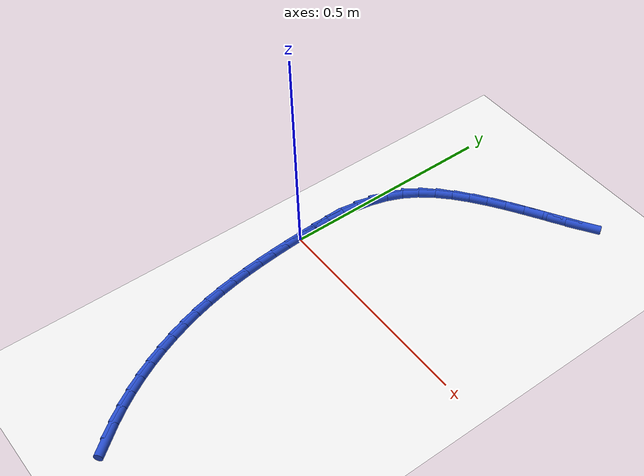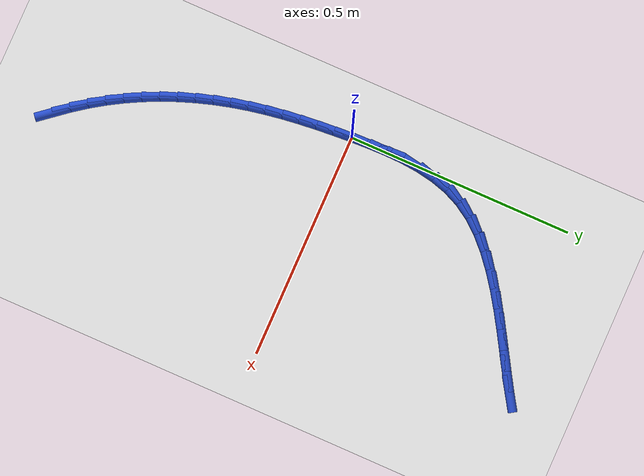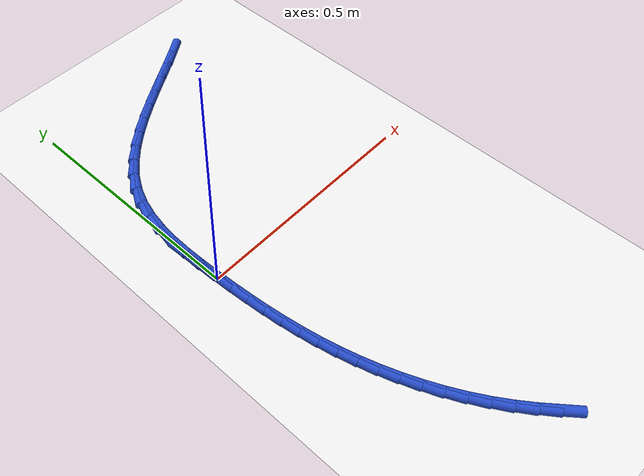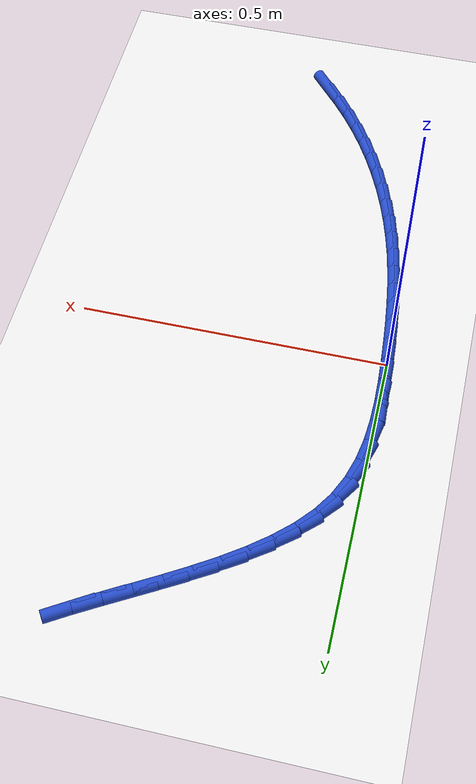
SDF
<sdf version="1.6">
 <world name="default">
  <model name="ground_plane">
   <static>1</static>
   <link name="link">
    <collision name="collision">
     <geometry><plane><normal>0 0 1</normal><size>100 100</size></plane></geometry>
     <surface><friction><ode><mu>100</mu><mu2>50</mu2></ode></friction></surface>
    </collision>
    <visual name="visual">
     <cast_shadows>0</cast_shadows>
     <geometry><plane><normal>0 0 1</normal><size>100 100</size></plane></geometry>
     <material>
      <script><uri>file://media/materials/scripts/gazebo.material</uri><name>Gazebo/WhiteGlow</name></script>
     </material>
    </visual>
   </link>
  </model>
  <model name="line">
   <link name="link_0">
    <pose>2.5804011705155006e-17 4.85722573273506e-17 0.01 0 1.57 -1.5212838050681239</pose>
    <collision name="collision">
     <geometry><cylinder><radius>0.01</radius><length>0.08</length></cylinder></geometry>
    </collision>
    <visual name="visual">
     <material>
      <script><name>Gazebo/Blue</name><uri>file://media/materials/scripts/gazebo.material</uri></script>
     </material>
     <geometry><cylinder><radius>0.01</radius><length>0.08</length></cylinder></geometry>
    </visual>
   </link>
   <link name="link_1">
    <pose>-0.0019433137426240659 0.0392168568818954 0.01 0 1.57 -1.5498003176207837</pose>
    <collision name="collision">
     <geometry><cylinder><radius>0.01</radius><length>0.08</length></cylinder></geometry>
    </collision>
    <visual name="visual">
     <material>
      <script><name>Gazebo/Blue</name><uri>file://media/materials/scripts/gazebo.material</uri></script>
     </material>
     <geometry><cylinder><radius>0.01</radius><length>0.08</length></cylinder></geometry>
    </visual>
   </link>
   <link name="link_2">
    <pose>-0.0027694834000763996 0.07855996471965532 0.01 0 1.57 1.5458418137314556</pose>
    <collision name="collision">
     <geometry><cylinder><radius>0.01</radius><length>0.08</length></cylinder></geometry>
    </collision>
    <visual name="visual">
     <material>
      <script><name>Gazebo/Blue</name><uri>file://media/materials/scripts/gazebo.material</uri></script>
     </material>
     <geometry><cylinder><radius>0.01</radius><length>0.08</length></cylinder></geometry>
    </visual>
   </link>
   <link name="link_3">
    <pose>-0.0017938675187386993 0.11764761816727691 0.01 0 1.57 1.4809994952417194</pose>
    <collision name="collision">
     <geometry><cylinder><radius>0.01</radius><length>0.08</length></cylinder></geometry>
    </collision>
    <visual name="visual">
     <material>
      <script><name>Gazebo/Blue</name><uri>file://media/materials/scripts/gazebo.material</uri></script>
     </material>
     <geometry><cylinder><radius>0.01</radius><length>0.08</length></cylinder></geometry>
    </visual>
   </link>
   <link name="link_4">
    <pose>0.0016681753550073187 0.15609811187875713 0.01 0 1.57 1.395410960967276</pose>
    <collision name="collision">
     <geometry><cylinder><radius>0.01</radius><length>0.08</length></cylinder></geometry>
    </collision>
    <visual name="visual">
     <material>
      <script><name>Gazebo/Blue</name><uri>file://media/materials/scripts/gazebo.material</uri></script>
     </material>
     <geometry><cylinder><radius>0.01</radius><length>0.08</length></cylinder></geometry>
    </visual>
   </link>
   <link name="link_5">
    <pose>0.008301286674779926 0.1935297405080931 0.01 0 1.57 1.2875199271453694</pose>
    <collision name="collision">
     <geometry><cylinder><radius>0.01</radius><length>0.08</length></cylinder></geometry>
    </collision>
    <visual name="visual">
     <material>
      <script><name>Gazebo/Blue</name><uri>file://media/materials/scripts/gazebo.material</uri></script>
     </material>
     <geometry><cylinder><radius>0.01</radius><length>0.08</length></cylinder></geometry>
    </visual>
   </link>
   <link name="link_6">
    <pose>0.018790107894197414 0.22956079870928173 0.01 0 1.57 1.1572755042505294</pose>
    <collision name="collision">
     <geometry><cylinder><radius>0.01</radius><length>0.08</length></cylinder></geometry>
    </collision>
    <visual name="visual">
     <material>
      <script><name>Gazebo/Blue</name><uri>file://media/materials/scripts/gazebo.material</uri></script>
     </material>
     <geometry><cylinder><radius>0.01</radius><length>0.08</length></cylinder></geometry>
    </visual>
   </link>
   <link name="link_7">
    <pose>0.03381928046687805 0.2638095811363201 0.01 0 1.57 1.0113716114618447</pose>
    <collision name="collision">
     <geometry><cylinder><radius>0.01</radius><length>0.08</length></cylinder></geometry>
    </collision>
    <visual name="visual">
     <material>
      <script><name>Gazebo/Blue</name><uri>file://media/materials/scripts/gazebo.material</uri></script>
     </material>
     <geometry><cylinder><radius>0.01</radius><length>0.08</length></cylinder></geometry>
    </visual>
   </link>
   <link name="link_8">
    <pose>0.053944759830068384 0.2959512889091451 0.01 0 1.57 0.8801181496297427</pose>
    <collision name="collision">
     <geometry><cylinder><radius>0.01</radius><length>0.08</length></cylinder></geometry>
    </collision>
    <visual name="visual">
     <material>
      <script><name>Gazebo/Blue</name><uri>file://media/materials/scripts/gazebo.material</uri></script>
     </material>
     <geometry><cylinder><radius>0.01</radius><length>0.08</length></cylinder></geometry>
    </visual>
   </link>
   <link name="link_9">
    <pose>0.07882666081428817 0.32605727437229265 0.01 0 1.57 0.7747828723350667</pose>
    <collision name="collision">
     <geometry><cylinder><radius>0.01</radius><length>0.08</length></cylinder></geometry>
    </collision>
    <visual name="visual">
     <material>
      <script><name>Gazebo/Blue</name><uri>file://media/materials/scripts/gazebo.material</uri></script>
     </material>
     <geometry><cylinder><radius>0.01</radius><length>0.08</length></cylinder></geometry>
    </visual>
   </link>
   <link name="link_10">
    <pose>0.10774421695706923 0.3543673200458348 0.01 0 1.57 0.6928180842921344</pose>
    <collision name="collision">
     <geometry><cylinder><radius>0.01</radius><length>0.08</length></cylinder></geometry>
    </collision>
    <visual name="visual">
     <material>
      <script><name>Gazebo/Blue</name><uri>file://media/materials/scripts/gazebo.material</uri></script>
     </material>
     <geometry><cylinder><radius>0.01</radius><length>0.08</length></cylinder></geometry>
    </visual>
   </link>
   <link name="link_11">
    <pose>0.1399752656243701 0.3811218258532908 0.01 0 1.57 0.6309341611572226</pose>
    <collision name="collision">
     <geometry><cylinder><radius>0.01</radius><length>0.08</length></cylinder></geometry>
    </collision>
    <visual name="visual">
     <material>
      <script><name>Gazebo/Blue</name><uri>file://media/materials/scripts/gazebo.material</uri></script>
     </material>
     <geometry><cylinder><radius>0.01</radius><length>0.08</length></cylinder></geometry>
    </visual>
   </link>
   <link name="link_12">
    <pose>0.17479764418214916 0.40656119171818006 0.01 0 1.57 0.5861814027398884</pose>
    <collision name="collision">
     <geometry><cylinder><radius>0.01</radius><length>0.08</length></cylinder></geometry>
    </collision>
    <visual name="visual">
     <material>
      <script><name>Gazebo/Blue</name><uri>file://media/materials/scripts/gazebo.material</uri></script>
     </material>
     <geometry><cylinder><radius>0.01</radius><length>0.08</length></cylinder></geometry>
    </visual>
   </link>
   <link name="link_13">
    <pose>0.21148918999636473 0.4309258175640216 0.01 0 1.57 0.556338241644553</pose>
    <collision name="collision">
     <geometry><cylinder><radius>0.01</radius><length>0.08</length></cylinder></geometry>
    </collision>
    <visual name="visual">
     <material>
      <script><name>Gazebo/Blue</name><uri>file://media/materials/scripts/gazebo.material</uri></script>
     </material>
     <geometry><cylinder><radius>0.01</radius><length>0.08</length></cylinder></geometry>
    </visual>
   </link>
   <link name="link_14">
    <pose>0.24932774043297545 0.45445610331433495 0.01 0 1.57 0.5400025893214145</pose>
    <collision name="collision">
     <geometry><cylinder><radius>0.01</radius><length>0.08</length></cylinder></geometry>
    </collision>
    <visual name="visual">
     <material>
      <script><name>Gazebo/Blue</name><uri>file://media/materials/scripts/gazebo.material</uri></script>
     </material>
     <geometry><cylinder><radius>0.01</radius><length>0.08</length></cylinder></geometry>
    </visual>
   </link>
   <link name="link_15">
    <pose>0.2875911328579397 0.47739244889263915 0.01 0 1.57 0.5365985957737185</pose>
    <collision name="collision">
     <geometry><cylinder><radius>0.01</radius><length>0.08</length></cylinder></geometry>
    </collision>
    <visual name="visual">
     <material>
      <script><name>Gazebo/Blue</name><uri>file://media/materials/scripts/gazebo.material</uri></script>
     </material>
     <geometry><cylinder><radius>0.01</radius><length>0.08</length></cylinder></geometry>
    </visual>
   </link>
   <link name="link_16">
    <pose>0.3255572046372158 0.49997525422245376 0.01 0 1.57 0.5464024063301988</pose>
    <collision name="collision">
     <geometry><cylinder><radius>0.01</radius><length>0.08</length></cylinder></geometry>
    </collision>
    <visual name="visual">
     <material>
      <script><name>Gazebo/Blue</name><uri>file://media/materials/scripts/gazebo.material</uri></script>
     </material>
     <geometry><cylinder><radius>0.01</radius><length>0.08</length></cylinder></geometry>
    </visual>
   </link>
   <link name="link_17">
    <pose>0.36250379313676234 0.5224449192272977 0.01 0 1.57 0.5706372361215709</pose>
    <collision name="collision">
     <geometry><cylinder><radius>0.01</radius><length>0.08</length></cylinder></geometry>
    </collision>
    <visual name="visual">
     <material>
      <script><name>Gazebo/Blue</name><uri>file://media/materials/scripts/gazebo.material</uri></script>
     </material>
     <geometry><cylinder><radius>0.01</radius><length>0.08</length></cylinder></geometry>
    </visual>
   </link>
   <link name="link_213">
    <pose>0.20644078209193645 -0.6007151706756728 0.01 0 1.57 -0.8879624045946204</pose>
    <collision name="collision">
     <geometry><cylinder><radius>0.01</radius><length>0.08</length></cylinder></geometry>
    </collision>
    <visual name="visual">
     <material>
      <script><name>Gazebo/Blue</name><uri>file://media/materials/scripts/gazebo.material</uri></script>
     </material>
     <geometry><cylinder><radius>0.01</radius><length>0.08</length></cylinder></geometry>
    </visual>
   </link>
   <link name="link_214">
    <pose>0.1821087886696574 -0.5707997393730493 0.01 0 1.57 -0.9355120042579427</pose>
    <collision name="collision">
     <geometry><cylinder><radius>0.01</radius><length>0.08</length></cylinder></geometry>
    </collision>
    <visual name="visual">
     <material>
      <script><name>Gazebo/Blue</name><uri>file://media/materials/scripts/gazebo.material</uri></script>
     </material>
     <geometry><cylinder><radius>0.01</radius><length>0.08</length></cylinder></geometry>
    </visual>
   </link>
   <link name="link_215">
    <pose>0.1592908565104605 -0.5398492430884367 0.01 0 1.57 -0.9851756323133741</pose>
    <collision name="collision">
     <geometry><cylinder><radius>0.01</radius><length>0.08</length></cylinder></geometry>
    </collision>
    <visual name="visual">
     <material>
      <script><name>Gazebo/Blue</name><uri>file://media/materials/scripts/gazebo.material</uri></script>
     </material>
     <geometry><cylinder><radius>0.01</radius><length>0.08</length></cylinder></geometry>
    </visual>
   </link>
   <link name="link_216">
    <pose>0.13808579696158535 -0.5078769121526071 0.01 0 1.57 -1.0354320052394206</pose>
    <collision name="collision">
     <geometry><cylinder><radius>0.01</radius><length>0.08</length></cylinder></geometry>
    </collision>
    <visual name="visual">
     <material>
      <script><name>Gazebo/Blue</name><uri>file://media/materials/scripts/gazebo.material</uri></script>
     </material>
     <geometry><cylinder><radius>0.01</radius><length>0.08</length></cylinder></geometry>
    </visual>
   </link>
   <link name="link_217">
    <pose>0.11854661127188579 -0.4749352823454892 0.01 0 1.57 -1.0841091023828264</pose>
    <collision name="collision">
     <geometry><cylinder><radius>0.01</radius><length>0.08</length></cylinder></geometry>
    </collision>
    <visual name="visual">
     <material>
      <script><name>Gazebo/Blue</name><uri>file://media/materials/scripts/gazebo.material</uri></script>
     </material>
     <geometry><cylinder><radius>0.01</radius><length>0.08</length></cylinder></geometry>
    </visual>
   </link>
   <link name="link_218">
    <pose>0.10066059820681408 -0.44113326272959 0.01 0 1.57 -1.1311387293549433</pose>
    <collision name="collision">
     <geometry><cylinder><radius>0.01</radius><length>0.08</length></cylinder></geometry>
    </collision>
    <visual name="visual">
     <material>
      <script><name>Gazebo/Blue</name><uri>file://media/materials/scripts/gazebo.material</uri></script>
     </material>
     <geometry><cylinder><radius>0.01</radius><length>0.08</length></cylinder></geometry>
    </visual>
   </link>
   <link name="link_219">
    <pose>0.0844099820852425 -0.4065841162852005 0.01 0 1.57 -1.1766494101014424</pose>
    <collision name="collision">
     <geometry><cylinder><radius>0.01</radius><length>0.08</length></cylinder></geometry>
    </collision>
    <visual name="visual">
     <material>
      <script><name>Gazebo/Blue</name><uri>file://media/materials/scripts/gazebo.material</uri></script>
     </material>
     <geometry><cylinder><radius>0.01</radius><length>0.08</length></cylinder></geometry>
    </visual>
   </link>
   <link name="link_220">
    <pose>0.06977698722604445 -0.37140110599261345 0.01 0 1.57 -1.2207885703036991</pose>
    <collision name="collision">
     <geometry><cylinder><radius>0.01</radius><length>0.08</length></cylinder></geometry>
    </collision>
    <visual name="visual">
     <material>
      <script><name>Gazebo/Blue</name><uri>file://media/materials/scripts/gazebo.material</uri></script>
     </material>
     <geometry><cylinder><radius>0.01</radius><length>0.08</length></cylinder></geometry>
    </visual>
   </link>
   <link name="link_221">
    <pose>0.05674383794809212 -0.33569749483211975 0.01 0 1.57 -1.263718732462759</pose>
    <collision name="collision">
     <geometry><cylinder><radius>0.01</radius><length>0.08</length></cylinder></geometry>
    </collision>
    <visual name="visual">
     <material>
      <script><name>Gazebo/Blue</name><uri>file://media/materials/scripts/gazebo.material</uri></script>
     </material>
     <geometry><cylinder><radius>0.01</radius><length>0.08</length></cylinder></geometry>
    </visual>
   </link>
   <link name="link_222">
    <pose>0.045292758570258135 -0.29958654578401067 0.01 0 1.57 -1.3056123455118778</pose>
    <collision name="collision">
     <geometry><cylinder><radius>0.01</radius><length>0.08</length></cylinder></geometry>
    </collision>
    <visual name="visual">
     <material>
      <script><name>Gazebo/Blue</name><uri>file://media/materials/scripts/gazebo.material</uri></script>
     </material>
     <geometry><cylinder><radius>0.01</radius><length>0.08</length></cylinder></geometry>
    </visual>
   </link>
   <link name="link_223">
    <pose>0.03540583665158908 -0.2631813670477244 0.01 0 1.57 -1.3459359441975753</pose>
    <collision name="collision">
     <geometry><cylinder><radius>0.01</radius><length>0.08</length></cylinder></geometry>
    </collision>
    <visual name="visual">
     <material>
      <script><name>Gazebo/Blue</name><uri>file://media/materials/scripts/gazebo.material</uri></script>
     </material>
     <geometry><cylinder><radius>0.01</radius><length>0.08</length></cylinder></geometry>
    </visual>
   </link>
   <link name="link_224">
    <pose>0.027027851113526343 -0.22655284197566336 0.01 0 1.57 -1.3829097202630347</pose>
    <collision name="collision">
     <geometry><cylinder><radius>0.01</radius><length>0.08</length></cylinder></geometry>
    </collision>
    <visual name="visual">
     <material>
      <script><name>Gazebo/Blue</name><uri>file://media/materials/scripts/gazebo.material</uri></script>
     </material>
     <geometry><cylinder><radius>0.01</radius><length>0.08</length></cylinder></geometry>
    </visual>
   </link>
   <link name="link_225">
    <pose>0.020015830197273817 -0.1896725402146527 0.01 0 1.57 -1.4159814408629732</pose>
    <collision name="collision">
     <geometry><cylinder><radius>0.01</radius><length>0.08</length></cylinder></geometry>
    </collision>
    <visual name="visual">
     <material>
      <script><name>Gazebo/Blue</name><uri>file://media/materials/scripts/gazebo.material</uri></script>
     </material>
     <geometry><cylinder><radius>0.01</radius><length>0.08</length></cylinder></geometry>
    </visual>
   </link>
   <link name="link_226">
    <pose>0.014214196904455379 -0.1524977651625395 0.01 0 1.57 -1.4449237084907331</pose>
    <collision name="collision">
     <geometry><cylinder><radius>0.01</radius><length>0.08</length></cylinder></geometry>
    </collision>
    <visual name="visual">
     <material>
      <script><name>Gazebo/Blue</name><uri>file://media/materials/scripts/gazebo.material</uri></script>
     </material>
     <geometry><cylinder><radius>0.01</radius><length>0.08</length></cylinder></geometry>
    </visual>
   </link>
   <link name="link_227">
    <pose>0.00946737423669491 -0.11498582021717073 0.01 0 1.57 -1.4696017316411523</pose>
    <collision name="collision">
     <geometry><cylinder><radius>0.01</radius><length>0.08</length></cylinder></geometry>
    </collision>
    <visual name="visual">
     <material>
      <script><name>Gazebo/Blue</name><uri>file://media/materials/scripts/gazebo.material</uri></script>
     </material>
     <geometry><cylinder><radius>0.01</radius><length>0.08</length></cylinder></geometry>
    </visual>
   </link>
   <link name="link_228">
    <pose>0.005619785195616202 -0.07709400877639246 0.01 0 1.57 -1.4899606426341299</pose>
    <collision name="collision">
     <geometry><cylinder><radius>0.01</radius><length>0.08</length></cylinder></geometry>
    </collision>
    <visual name="visual">
     <material>
      <script><name>Gazebo/Blue</name><uri>file://media/materials/scripts/gazebo.material</uri></script>
     </material>
     <geometry><cylinder><radius>0.01</radius><length>0.08</length></cylinder></geometry>
    </visual>
   </link>
   <link name="link_229">
    <pose>0.0025158527828433213 -0.038779634238053556 0.01 0 1.57 -1.5060114956180097</pose>
    <collision name="collision">
     <geometry><cylinder><radius>0.01</radius><length>0.08</length></cylinder></geometry>
    </collision>
    <visual name="visual">
     <material>
      <script><name>Gazebo/Blue</name><uri>file://media/materials/scripts/gazebo.material</uri></script>
     </material>
     <geometry><cylinder><radius>0.01</radius><length>0.08</length></cylinder></geometry>
    </visual>
   </link>
   <link name="link_230">
    <pose>3.5561831257524545e-17 -8.326672684688674e-17 0.01 0 1.57 -1.5178177494801428</pose>
    <collision name="collision">
     <geometry><cylinder><radius>0.01</radius><length>0.08</length></cylinder></geometry>
    </collision>
    <visual name="visual">
     <material>
      <script><name>Gazebo/Blue</name><uri>file://media/materials/scripts/gazebo.material</uri></script>
     </material>
     <geometry><cylinder><radius>0.01</radius><length>0.08</length></cylinder></geometry>
    </visual>
   </link>
   <link name="link_231">
    <pose>-0.002083350151289779 0.03928759053992101 0.01 0 1.57 -1.5254833853067018</pose>
    <collision name="collision">
     <geometry><cylinder><radius>0.01</radius><length>0.08</length></cylinder></geometry>
    </collision>
    <visual name="visual">
     <material>
      <script><name>Gazebo/Blue</name><uri>file://media/materials/scripts/gazebo.material</uri></script>
     </material>
     <geometry><cylinder><radius>0.01</radius><length>0.08</length></cylinder></geometry>
    </visual>
   </link>
   <link name="link_232">
    <pose>-0.003889774669402246 0.07912583398386269 0.01 0 1.57 -1.5216765183595395</pose>
    <collision name="collision">
     <geometry><cylinder><radius>0.01</radius><length>0.08</length></cylinder></geometry>
    </collision>
    <visual name="visual">
     <material>
      <script><name>Gazebo/Blue</name><uri>file://media/materials/scripts/gazebo.material</uri></script>
     </material>
     <geometry><cylinder><radius>0.01</radius><length>0.08</length></cylinder></geometry>
    </visual>
   </link>
  </model>
 </world>
</sdf>
